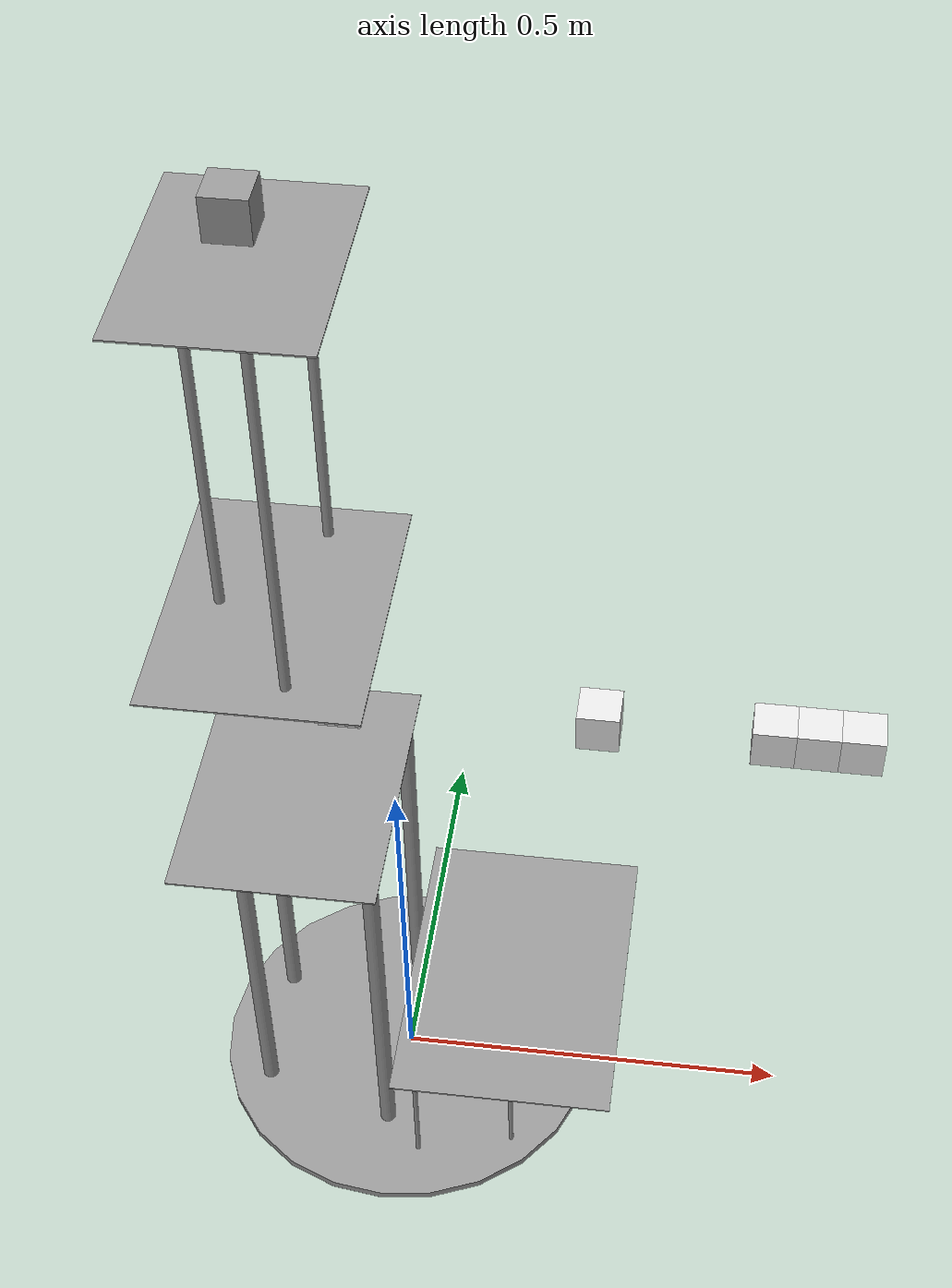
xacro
<?xml version="1.0"?>

<!-- XML namespaces -->
<robot xmlns:sensor="http://playerstage.sourceforge.net/gazebo/xmlschema/#sensor"
       xmlns:controller="http://playerstage.sourceforge.net/gazebo/xmlschema/#controller"
       xmlns:interface="http://playerstage.sourceforge.net/gazebo/xmlschema/#interface"
       xmlns:xacro="http://ros.org/wiki/xacro"
	   name="NESTOR">

	<xacro:macro name="cyan1">
		<material name="cyan1">
			<color rgba="0 0.9 0.9 1.0"/>
		</material>
	</xacro:macro>

	<xacro:macro name="cyan2">
		<material name="cyan2">
	     <color rgba="0 0.7 0.7 1.0"/>
		</material>
	</xacro:macro>

	<xacro:macro name="cyan3">
		<material name="cyan3">
	     <color rgba="0 0.5 0.5 1.0"/>
		</material>
	</xacro:macro>

	<xacro:macro name="black">
		<material name="black">
			<color rgba="0.1 0.1 0.1 1.0"/>
		</material>
	</xacro:macro>

	<xacro:macro name="black1">
		<material name="black1">
			<color rgba="0.2 0.2 0.2 1.0"/>
		</material>
	</xacro:macro>

	<xacro:macro name="yellow2">
		<material name="yellow2">
			<color rgba="0.8 0.8 0 1.0"/>
		</material>
	</xacro:macro>

	<xacro:macro name="green1">
		<material name="green1">
			<color rgba="0 1 0 1.0"/>
		</material>
	</xacro:macro>

	<xacro:macro name="green2">
		<material name="green2">
			<color rgba="0.1 0.8 0 1.0"/>
		</material>
	</xacro:macro>

	<xacro:macro name="green3">
		<material name="green3">
			<color rgba="0.1 0.5 0.1 1.0"/>
		</material>
	</xacro:macro>

	<xacro:macro name="grey1">
		<material name="grey1">
			<color rgba="0.9 0.9 0.9 1.0"/>
		</material>
	</xacro:macro>

	<xacro:macro name="grey2">
		<material name="grey2">
			<color rgba="0.6 0.6 0.6 1.0"/>
		</material>
	</xacro:macro>

	<xacro:macro name="grey3">
		<material name="grey3">
			<color rgba="0.8 0.8 0.8 1.0"/>
		</material>
	</xacro:macro>

	<xacro:macro name="blue1">
		<material name="blue1">
			<color rgba="0 0 0.9 1.0"/>
		</material>
	</xacro:macro>

	<xacro:macro name="ax12_color">
		<material name="ax12_color">
			<color rgba="0.1 0.1 0.1 1.0"/>
		</material>
	</xacro:macro>

	<xacro:macro name="bracket_color">
		<material name="bracket_color">
			<color rgba="0.9 0.9 0.9 1.0"/>
		</material>
	</xacro:macro>

	<xacro:macro name="ax12" params="name xyz rpy">
		<link name="${name}">
			<visual>
				<origin xyz="${xyz}" rpy="${rpy}" />
				<geometry>
					<box size="0.5 0.32 0.38" />
				</geometry>
				<material name="black1">
					<color rgba="0.2 0.2 0.2 1.0"/>
				</material>
             </visual>
             <collision>
				<origin xyz="${xyz}" rpy="${rpy}" />
					<geometry>
						<box size="0.5 0.32 0.38" />
					</geometry>
             </collision>
             <xacro:default_inertial mass="0.055" />
        </link>
        <xacro:default_gazebo name="${name}" material="Gazebo/FlatBlack" />
	</xacro:macro>

	<xacro:macro name="bracket1" params="name xyz rpy">
		<link name="${name}">
			<visual>
				<origin xyz="${xyz}" rpy="${rpy}" />
				<geometry>
					<box size="0.05 0.025 0.038" />
				</geometry>
				<material name="black1">
					<color rgba="0.2 0.2 0.2 1.0"/>
				</material>
             </visual>
             <collision>
				<origin xyz="${xyz}" rpy="${rpy}" />
					<geometry>
						<box size="0.05 0.025 0.038" />
					</geometry>
             </collision>
             <xacro:default_inertial mass="0.02" />
        </link>
        <xacro:default_gazebo name="${name}" material="Gazebo/WhiteEmissive" />
	</xacro:macro>

	<xacro:macro name="my_box" params="name lwh xyz rpy mass material *rviz_color">
		<link name="${name}">
			<visual>
				<origin xyz="${xyz}" rpy="${rpy}" />
				<geometry>
					<box size="${lwh}" />
				</geometry>
			    <xacro:insert_block name="rviz_color" />
             </visual>
             <collision>
				<origin xyz="${xyz}" rpy="${rpy}" />
					<geometry>
						<box size="${lwh}" />
					</geometry>
             </collision>
             <xacro:default_inertial mass="${mass}" />
        </link>
        <xacro:default_gazebo name="${name}" material="${material}" />
	</xacro:macro>

	<xacro:macro name="my_cylinder" params="name l r xyz rpy mass material *rviz_color">
		<link name="${name}">
			<visual>
				<origin xyz="${xyz}" rpy="${rpy}" />
				<geometry>
					<cylinder length="${l}" radius="${r}" />
				</geometry>
            	<xacro:insert_block name="rviz_color" />
            </visual>
            <collision>
				<origin xyz="${xyz}" rpy="${rpy}" />
					<geometry>
						<cylinder length="${l}" radius="${r}" />
					</geometry>
            </collision>
            <xacro:default_inertial mass="${mass}" />
        </link>
        <xacro:default_gazebo name="${name}" material="${material}" />
	</xacro:macro>

    <xacro:macro name="default_inertial" params="mass">
		<inertial>
			<mass value="${mass}" />
			<inertia ixx="0.001" ixy="0.0" ixz="0.0"
                     iyy="0.001" iyz="0.0"
                     izz="0.001" />
			</inertial>
    </xacro:macro>

    <xacro:macro name="default_gazebo" params="name material">
 		<gazebo reference="${name}">
			<material>${material}</material>
			<selfCollide>false</selfCollide>
			<turnGravityOff>true</turnGravityOff>
		</gazebo>
    </xacro:macro>

 	<!-- ============================   Body   ============================ -->

	<xacro:my_cylinder name="base_link" l="0.01" r="0.25" xyz="0 0 0" rpy="0 0 0" mass="0.1" material="Gazebo/Grey">
		<xacro:grey2 />
	</xacro:my_cylinder>

	<xacro:my_box name="plate_link" lwh="0.28 0.4 0.002" xyz="0 0 0" rpy="0 0 0" mass="0.1" material="Gazebo/Grey">
		<xacro:grey2 />
	</xacro:my_box>
	<xacro:my_cylinder name="plate_tube1_link" l="0.170" r="0.003" xyz="0 0 0" rpy="0 0 0" mass="0.1" material="Gazebo/Grey">
		<xacro:grey2 />
	</xacro:my_cylinder>
	<xacro:my_cylinder name="plate_tube2_link" l="0.170" r="0.003" xyz="0 0 0" rpy="0 0 0" mass="0.1" material="Gazebo/Grey">
		<xacro:grey2 />
	</xacro:my_cylinder>
	<xacro:my_cylinder name="plate_tube3_link" l="0.170" r="0.003" xyz="0 0 0" rpy="0 0 0" mass="0.1" material="Gazebo/Grey">
		<xacro:grey2 />
	</xacro:my_cylinder>
	<xacro:my_cylinder name="plate_tube4_link" l="0.170" r="0.003" xyz="0 0 0" rpy="0 0 0" mass="0.1" material="Gazebo/Grey">
		<xacro:grey2 />
	</xacro:my_cylinder>

        <xacro:my_box name="base_laser" lwh="0.05 0.05 0.041" xyz="0 0 0" rpy="0 0 0" mass="0.5" material="Gazebo/FlatBlack">
                <xacro:ax12_color />
        </xacro:my_box>

        <xacro:my_cylinder name="hokuyo_laser" l="0.029" r="0.021" xyz="0 0 0" rpy="0 0 0" mass="0.5" material="Gazebo/FlatBlack">
                <xacro:ax12_color />
        </xacro:my_cylinder>

	<xacro:my_box name="level1_link" lwh="0.25 0.34 0.002" xyz="0 0 0" rpy="0 0 0" mass="0.1" material="Gazebo/Grey">
		<xacro:grey2 />
	</xacro:my_box>
	<xacro:my_cylinder name="level1_tube1_link" l="0.500" r="0.01" xyz="0 0 0" rpy="0 0 0" mass="0.1" material="Gazebo/Grey">
		<xacro:grey2 />
	</xacro:my_cylinder>
	<xacro:my_cylinder name="level1_tube2_link" l="0.500" r="0.01" xyz="0 0 0" rpy="0 0 0" mass="0.1" material="Gazebo/Grey">
		<xacro:grey2 />
	</xacro:my_cylinder>
	<xacro:my_cylinder name="level1_tube3_link" l="0.500" r="0.01" xyz="0 0 0" rpy="0 0 0" mass="0.1" material="Gazebo/Grey">
		<xacro:grey2 />
	</xacro:my_cylinder>
	<xacro:my_cylinder name="level1_tube4_link" l="0.500" r="0.01" xyz="0 0 0" rpy="0 0 0" mass="0.1" material="Gazebo/Grey">
		<xacro:grey2 />
	</xacro:my_cylinder>

	<xacro:my_box name="level2_link" lwh="0.25 0.34 0.002" xyz="0 0 0" rpy="0 0 0" mass="0.1" material="Gazebo/Grey">
		<xacro:grey2 />
	</xacro:my_box>

	<xacro:my_box name="head_base_link" lwh="0.21 0.28 0.002" xyz="0 0 0" rpy="0 0 0" mass="0.1" material="Gazebo/Grey">
		<xacro:grey2 />
	</xacro:my_box>
	<xacro:my_cylinder name="head_tube1_link" l="0.456" r="0.006" xyz="0 0 0" rpy="0 0 0" mass="0.1" material="Gazebo/Grey">
		<xacro:grey2 />
	</xacro:my_cylinder>
	<xacro:my_cylinder name="head_tube2_link" l="0.456" r="0.006" xyz="0 0 0" rpy="0 0 0" mass="0.1" material="Gazebo/Grey">
		<xacro:grey2 />
	</xacro:my_cylinder>
	<xacro:my_cylinder name="head_tube3_link" l="0.456" r="0.006" xyz="0 0 0" rpy="0 0 0" mass="0.1" material="Gazebo/Grey">
		<xacro:grey2 />
	</xacro:my_cylinder>

	<xacro:my_box name="head_kinect_link" lwh="0.05 0.05 0.05" xyz="0 0 0" rpy="0 0 0" mass="0.1" material="Gazebo/Grey">
                <xacro:grey2 />
        </xacro:my_box>

 	<!-- ============================   Arms   ============================ -->
	<xacro:my_box name="arm_base_link" lwh="0.05 0.05 0.05" xyz="0.0 0.0 0.0" rpy="0 0 0" mass="0.055" material="Gazebo/WhiteEmissive">
		<xacro:bracket_color />
	</xacro:my_box>
	<xacro:my_box name="shoulder_yaw_link" lwh="0.05 0.05 0.05" xyz="0.0 0.0 0.0" rpy="0 0 0" mass="0.055" material="Gazebo/WhiteEmissive">
		<xacro:bracket_color />
	</xacro:my_box>
	<xacro:my_box name="shoulder_pitch_link" lwh="0.05 0.05 0.05" xyz="0.0 0.0 0.0" rpy="0 0 0" mass="0.055" material="Gazebo/WhiteEmissive">
		<xacro:bracket_color />
	</xacro:my_box>
	<xacro:my_box name="elbow_pitch_link" lwh="0.05 0.05 0.05" xyz="0.0 0.0 0.0" rpy="0 0 0" mass="0.055" material="Gazebo/WhiteEmissive">
		<xacro:bracket_color />
	</xacro:my_box>
	<xacro:my_box name="wrist_pitch_link" lwh="0.05 0.05 0.05" xyz="0.0 0.0 0.0" rpy="0 0 0" mass="0.055" material="Gazebo/WhiteEmissive">
		<xacro:bracket_color />
	</xacro:my_box>
	<xacro:my_box name="wrist_yaw_link" lwh="0.05 0.05 0.05" xyz="0.0 0.0 0.0" rpy="0 0 0" mass="0.055" material="Gazebo/WhiteEmissive">
		<xacro:bracket_color />
	</xacro:my_box>
	<xacro:my_box name="wrist_roll_link" lwh="0.05 0.05 0.05" xyz="0.0 0.0 0.0" rpy="0 0 0" mass="0.055" material="Gazebo/WhiteEmissive">
		<xacro:bracket_color />
	</xacro:my_box>

 	<!-- ============================   Arms   ============================ -->

	<!-- =================== Joint Definitions ==================== -->

        <joint name="plate_joint" type="fixed">
        <parent link="base_link" />
        <child link="plate_link" />
        <origin xyz="0.15 0.0 0.176" rpy="0 0 0" />
        <axis xyz="1 0 0" />
        </joint>
        <joint name="plate_tube1_joint" type="fixed">
        <parent link="base_link" />
        <child link="plate_tube1_link" />
        <origin xyz="0.158 0.145 0.090" rpy="0 0 0" />
        <axis xyz="1 0 0" />
        </joint>
        <joint name="plate_tube2_joint" type="fixed">
        <parent link="base_link" />
        <child link="plate_tube2_link" />
        <origin xyz="0.158 -0.145 0.090" rpy="0 0 0" />
        <axis xyz="1 0 0" />
        </joint>
        <joint name="plate_tube3_joint" type="fixed">
        <parent link="base_link" />
        <child link="plate_tube3_link" />
        <origin xyz="0.038 0.175 0.090" rpy="0 0 0" />
        <axis xyz="1 0 0" />
        </joint>
        <joint name="plate_tube4_joint" type="fixed">
        <parent link="base_link" />
        <child link="plate_tube4_link" />
        <origin xyz="0.038 -0.175 0.090" rpy="0 0 0" />
        <axis xyz="1 0 0" />
        </joint>

        <joint name="base_laser_joint" type="fixed">
        <parent link="plate_link" />
        <child link="base_laser" />
        <origin xyz="0.05 0 -0.021" rpy="0 0 0" />
        <axis xyz="0 0 1" />
        </joint>
        <joint name="laser_joint" type="fixed">
        <parent link="base_laser" />
        <child link="hokuyo_laser" />
        <origin xyz="0 0 -0.035" rpy="3.141592653 0 0" />
        </joint>

        <joint name="level1_joint" type="fixed">
        <parent link="base_link" />
        <child link="level1_link" />
        <origin xyz="-0.12 0.0 0.509" rpy="0 0 0" />
        <axis xyz="1 0 0" />
        </joint>
        <joint name="level1_tube1_joint" type="fixed">
        <parent link="base_link" />
        <child link="level1_tube1_link" />
        <origin xyz="-0.01 0.130 0.255" rpy="0 0 0" />
        <axis xyz="1 0 0" />
        </joint>
        <joint name="level1_tube2_joint" type="fixed">
        <parent link="base_link" />
        <child link="level1_tube2_link" />
        <origin xyz="-0.01 -0.130 0.255" rpy="0 0 0" />
        <axis xyz="1 0 0" />
        </joint>
        <joint name="level1_tube3_joint" type="fixed">
        <parent link="base_link" />
        <child link="level1_tube3_link" />
        <origin xyz="-0.180 0.08 0.255" rpy="0 0 0" />
        <axis xyz="1 0 0" />
        </joint>
        <joint name="level1_tube4_joint" type="fixed">
        <parent link="base_link" />
        <child link="level1_tube4_link" />
        <origin xyz="-0.180 -0.08 0.255" rpy="0 0 0" />
        <axis xyz="1 0 0" />
        </joint>

        <joint name="level2_joint" type="fixed">
        <parent link="level1_link" />
        <child link="level2_link" />
        <origin xyz="0.0 0.0 0.301" rpy="0 0 0" />
        <axis xyz="1 0 0" />
        </joint>

        <joint name="head_base_joint" type="fixed">
        <parent link="level2_link" />
        <child link="head_base_link" />
        <origin xyz="0.0 0.0 0.456" rpy="0 0 0" />
        <axis xyz="1 0 0" />
        </joint>
        <joint name="head_tube1_joint" type="fixed">
        <parent link="level2_link" />
        <child link="head_tube1_link" />
        <origin xyz="0.035 0.125 0.228" rpy="0 0 0" />
        <axis xyz="1 0 0" />
        </joint>
        <joint name="head_tube2_joint" type="fixed">
        <parent link="level2_link" />
        <child link="head_tube2_link" />
        <origin xyz="0.035 -0.125 0.228" rpy="0 0 0" />
        <axis xyz="1 0 0" />
        </joint>
        <joint name="head_tube3_joint" type="fixed">
        <parent link="level2_link" />
        <child link="head_tube3_link" />
        <origin xyz="-0.065 0.0 0.228" rpy="0 0 0" />
        <axis xyz="1 0 0" />
        </joint>

	<joint name="head_kinect_joint" type="fixed">
        <parent link="head_base_link" />
        <child link="head_kinect_link" />
        <origin xyz="0.0 0.0 0.06" rpy="0 0 0" />
        <axis xyz="1 0 0" />
        </joint>

	<!-- ARM -->

	<joint name="arm_base_joint" type="fixed">
        <parent link="level1_link" />
        <child link="arm_base_link" />
        <origin xyz="0.065 0.0 0.165" rpy="0 0 0" />
        <axis xyz="1 0 0" />
        </joint>

        <joint name="shoulder_yaw_joint" type="revolute">
        <parent link="arm_base_link" />
        <child link="shoulder_yaw_link" />
        <origin xyz="0.0 0.0 0.0" rpy="0 0 0" />
        <limit lower="-1.3" upper="1.3" effort="10" velocity="3" />
        <axis xyz="0 0 1" />
        <dynamics damping="0.0"/>
        </joint>

        <joint name="shoulder_pitch_joint" type="revolute">
        <parent link="shoulder_yaw_link" />
        <child link="shoulder_pitch_link" />
        <origin xyz="0.0 0.0 0.0" rpy="0 0 0" />
        <limit lower="-1.5" upper="0.5" effort="10" velocity="3" />
        <axis xyz="0 1 0" />
        <dynamics damping="0.0"/>
        </joint>

        <joint name="elbow_pitch_joint" type="revolute">
        <parent link="shoulder_pitch_link" />
        <child link="elbow_pitch_link" />
        <origin xyz="0.3 0.0 0" rpy="0 0 0" />
        <limit lower="-2.0" upper="2.0" effort="10" velocity="3" />
        <axis xyz="0 1 0" />
        <dynamics damping="0.0"/>
        </joint>

        <joint name="wrist_pitch_joint" type="revolute">
        <parent link="elbow_pitch_link" />
        <child link="wrist_pitch_link" />
        <origin xyz="0.2 0.0 0.0" rpy="0 0 0" />
        <limit lower="-2.0" upper="2.0" effort="10" velocity="3" />
        <axis xyz="0 1 0" />
        </joint>

        <joint name="wrist_yaw_joint" type="revolute">
        <parent link="wrist_pitch_link" />
        <child link="wrist_yaw_link" />
        <origin xyz="0.05 0.0 0" rpy="0 0 0" />
        <limit lower="-2.0" upper="2.0" effort="10" velocity="3" />
        <axis xyz="0 0 1" />
        <dynamics damping="0.0"/>
        </joint>

        <joint name="wrist_roll_joint" type="revolute">
        <parent link="wrist_yaw_link" />
        <child link="wrist_roll_link" />
        <origin xyz="0.05 0.0 0.0" rpy="0 0 0" />
        <limit lower="-2.0" upper="2.0" effort="10" velocity="3" />
        <axis xyz="1 0 0" />
        <dynamics damping="0.0"/>
        </joint>

<!-- Finger joint -->

	<gazebo reference="NESTOR">
  	</gazebo>
</robot>
